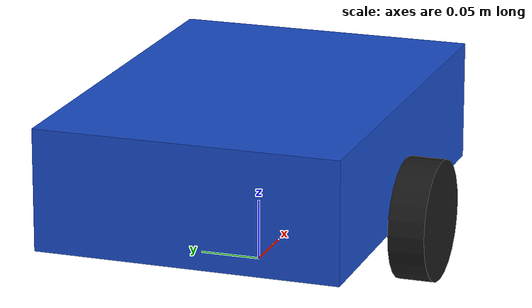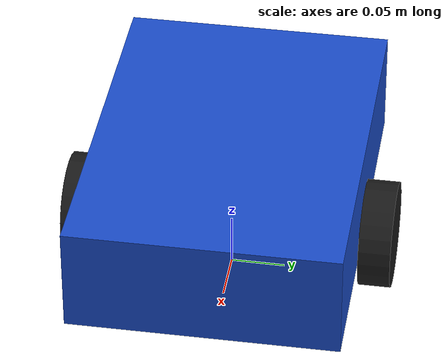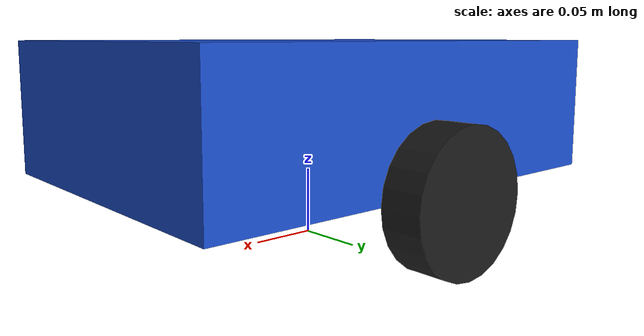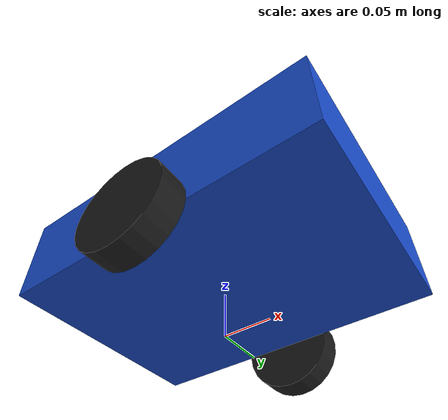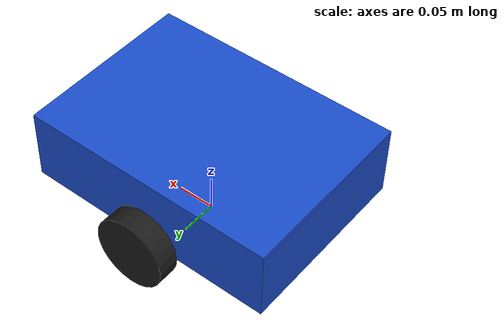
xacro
<?xml version="1.0"?>
<robot name="mobile_robot" xmlns:xacro="http://www.ros.org/wiki/xacro">

    <!-- Robot dimensions -->
    <xacro:property name="body_length" value="0.35"/>
    <xacro:property name="body_width" value="0.25"/>
    <xacro:property name="body_height" value="0.10"/>
    <xacro:property name="wheel_radius" value="0.05"/>
    <xacro:property name="wheel_width" value="0.03"/>

    <!-- Base frame -->
    <link name="base_footprint"/>

    <!-- Main robot body -->
    <link name="base_link">
        <visual>
            <geometry>
                <box size="${body_length} ${body_width} ${body_height}"/>
            </geometry>
            <material name="blue">
                <color rgba="0.1 0.3 0.8 1.0"/>
            </material>
        </visual>
        <collision>
            <geometry>
                <box size="${body_length} ${body_width} ${body_height}"/>
            </geometry>
        </collision>
        <inertial>
            <mass value="2.0"/>
            <inertia ixx="0.01" ixy="0" ixz="0"
                     iyy="0.02" iyz="0" izz="0.02"/>
        </inertial>
    </link>

    <joint name="base_footprint_joint" type="fixed">
        <parent link="base_footprint"/>
        <child link="base_link"/>
        <origin xyz="0 0 0.10" rpy="0 0 0"/>
    </joint>

    <!-- Left wheel -->
    <link name="left_wheel_link">
        <visual>
            <origin xyz="0 0 0" rpy="1.5708 0 0"/>
            <geometry>
                <cylinder radius="${wheel_radius}" length="${wheel_width}"/>
            </geometry>
            <material name="black">
                <color rgba="0.1 0.1 0.1 1.0"/>
            </material>
        </visual>
        <collision>
            <origin xyz="0 0 0" rpy="1.5708 0 0"/>
            <geometry>
                <cylinder radius="${wheel_radius}" length="${wheel_width}"/>
            </geometry>
        </collision>
        <inertial>
            <mass value="0.2"/>
            <inertia ixx="0.0003" ixy="0" ixz="0"
                     iyy="0.0003" iyz="0" izz="0.0003"/>
        </inertial>
    </link>

    <joint name="left_wheel_joint" type="continuous">
        <parent link="base_link"/>
        <child link="left_wheel_link"/>
        <origin xyz="0 0.14 -0.05" rpy="0 0 0"/>
        <axis xyz="0 1 0"/>
    </joint>

    <!-- Right wheel -->
    <link name="right_wheel_link">
        <visual>
            <origin xyz="0 0 0" rpy="1.5708 0 0"/>
            <geometry>
                <cylinder radius="${wheel_radius}" length="${wheel_width}"/>
            </geometry>
            <material name="black"/>
        </visual>
        <collision>
            <origin xyz="0 0 0" rpy="1.5708 0 0"/>
            <geometry>
                <cylinder radius="${wheel_radius}" length="${wheel_width}"/>
            </geometry>
        </collision>
        <inertial>
            <mass value="0.2"/>
            <inertia ixx="0.0003" ixy="0" ixz="0"
                     iyy="0.0003" iyz="0" izz="0.0003"/>
        </inertial>
    </link>

    <joint name="right_wheel_joint" type="continuous">
        <parent link="base_link"/>
        <child link="right_wheel_link"/>
        <origin xyz="0 -0.14 -0.05" rpy="0 0 0"/>
        <axis xyz="0 1 0"/>
    </joint>

</robot>
